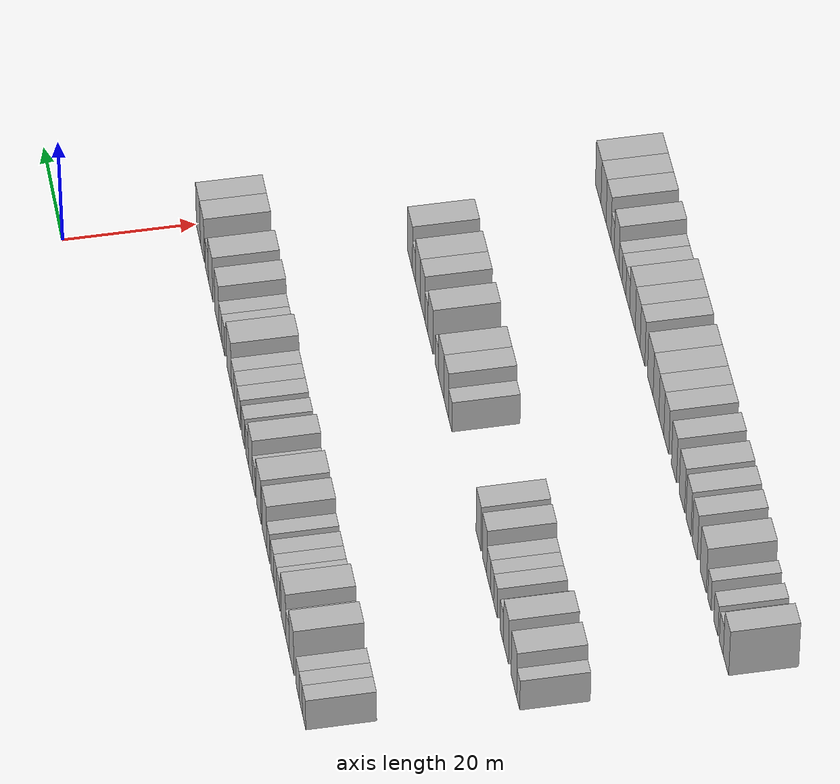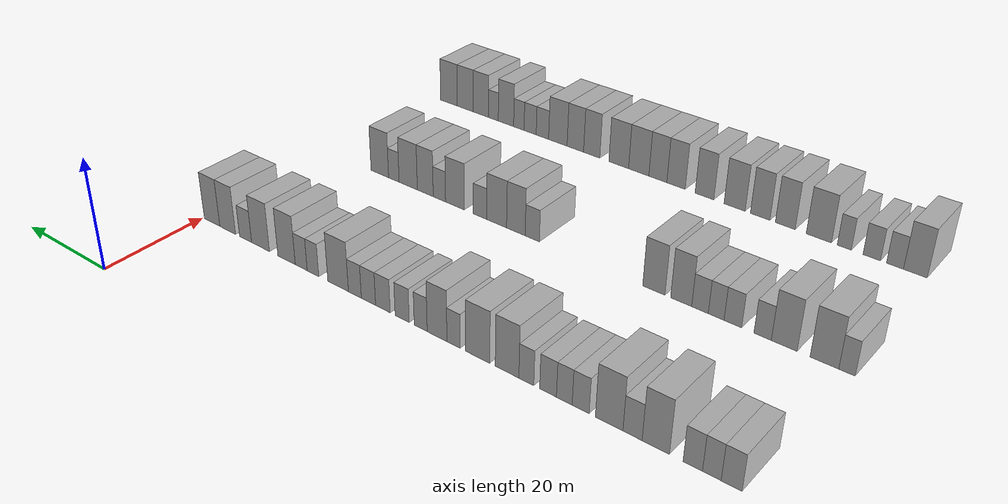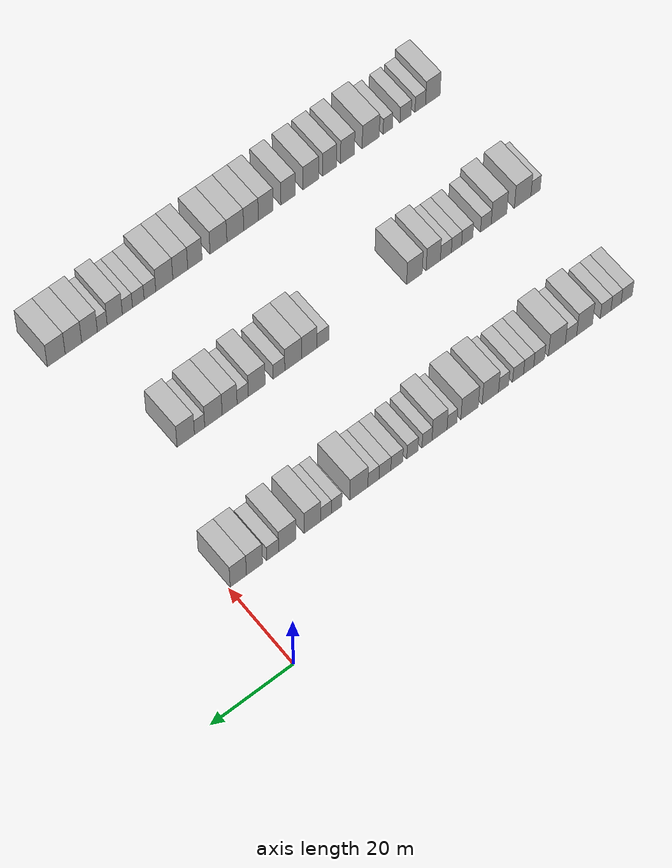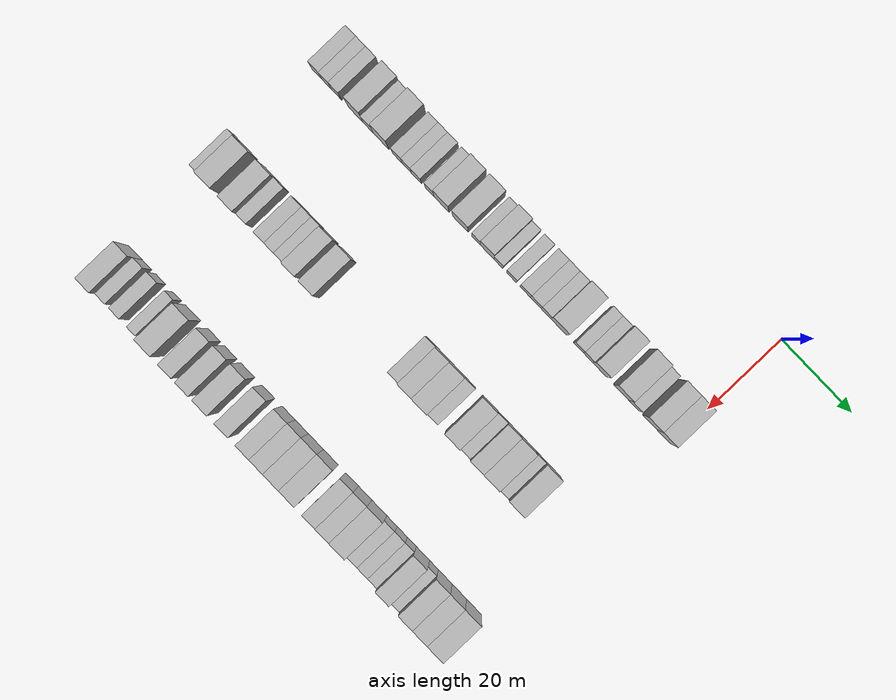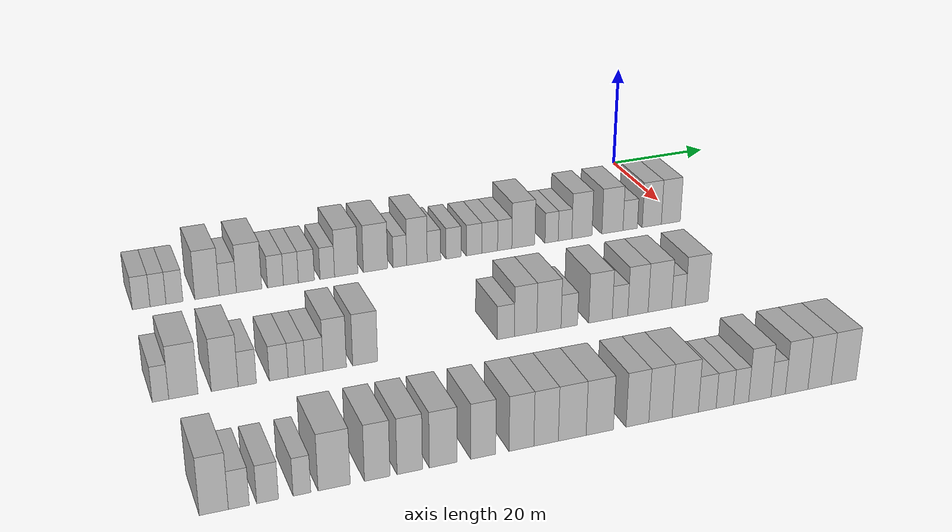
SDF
<sdf version="1.6">
 <world name="default">
  <model name="building_47">
   <static>1</static>
   <pose>25.0000 -100.5832 0 0.000000 0.000000 0.000000</pose>
   <link name="link">
    <pose>0 0 3.00 0 0 0</pose>
    <collision name="collision"><geometry><box><size>10.0000 2.9281 6.0000</size></box></geometry></collision>
    <visual name="visual">
     <cast_shadows>0</cast_shadows>
     <geometry><box><size>10.0000 2.9281 6.0000</size></box></geometry>
     <material>
      <script>
       <uri>model://HANNAS_wall/materials/scripts</uri>
       <uri>model://HANNAS_wall/materials/textures</uri>
       <name>vrc/HANNAS_wall</name>
      </script>
     </material>
    </visual>
   </link>
  </model>
  <model name="building_48">
   <static>1</static>
   <pose>25.0000 -97.7933 0 0.000000 0.000000 0.000000</pose>
   <link name="link">
    <pose>0 0 3.00 0 0 0</pose>
    <collision name="collision"><geometry><box><size>10.0000 2.6516 6.0000</size></box></geometry></collision>
    <visual name="visual">
     <cast_shadows>0</cast_shadows>
     <geometry><box><size>10.0000 2.6516 6.0000</size></box></geometry>
     <material>
      <script>
       <uri>model://HANNAS_wall/materials/scripts</uri>
       <uri>model://HANNAS_wall/materials/textures</uri>
       <name>vrc/HANNAS_wall</name>
      </script>
     </material>
    </visual>
   </link>
  </model>
  <model name="building_49">
   <static>1</static>
   <pose>25.0000 -95.0564 0 0.000000 0.000000 0.000000</pose>
   <link name="link">
    <pose>0 0 3.00 0 0 0</pose>
    <collision name="collision"><geometry><box><size>10.0000 2.8222 6.0000</size></box></geometry></collision>
    <visual name="visual">
     <cast_shadows>0</cast_shadows>
     <geometry><box><size>10.0000 2.8222 6.0000</size></box></geometry>
     <material>
      <script>
       <uri>model://HANNAS_wall/materials/scripts</uri>
       <uri>model://HANNAS_wall/materials/textures</uri>
       <name>vrc/HANNAS_wall</name>
      </script>
     </material>
    </visual>
   </link>
  </model>
  <model name="building_50">
   <static>1</static>
   <pose>25.0000 -89.5795 0 0.000000 0.000000 0.000000</pose>
   <link name="link">
    <pose>0 0 4.50 0 0 0</pose>
    <collision name="collision"><geometry><box><size>10.0000 4.1316 9.0000</size></box></geometry></collision>
    <visual name="visual">
     <cast_shadows>0</cast_shadows>
     <geometry><box><size>10.0000 4.1316 9.0000</size></box></geometry>
     <material>
      <script>
       <uri>model://HANNAS_wall/materials/scripts</uri>
       <uri>model://HANNAS_wall/materials/textures</uri>
       <name>vrc/HANNAS_wall</name>
      </script>
     </material>
    </visual>
   </link>
  </model>
  <model name="building_51">
   <static>1</static>
   <pose>25.0000 -86.0362 0 0.000000 0.000000 0.000000</pose>
   <link name="link">
    <pose>0 0 3.00 0 0 0</pose>
    <collision name="collision"><geometry><box><size>10.0000 2.9551 6.0000</size></box></geometry></collision>
    <visual name="visual">
     <cast_shadows>0</cast_shadows>
     <geometry><box><size>10.0000 2.9551 6.0000</size></box></geometry>
     <material>
      <script>
       <uri>model://HANNAS_wall/materials/scripts</uri>
       <uri>model://HANNAS_wall/materials/textures</uri>
       <name>vrc/HANNAS_wall</name>
      </script>
     </material>
    </visual>
   </link>
  </model>
  <model name="building_52">
   <static>1</static>
   <pose>25.0000 -82.3727 0 0.000000 0.000000 0.000000</pose>
   <link name="link">
    <pose>0 0 4.50 0 0 0</pose>
    <collision name="collision"><geometry><box><size>10.0000 4.3717 9.0000</size></box></geometry></collision>
    <visual name="visual">
     <cast_shadows>0</cast_shadows>
     <geometry><box><size>10.0000 4.3717 9.0000</size></box></geometry>
     <material>
      <script>
       <uri>model://HANNAS_wall/materials/scripts</uri>
       <uri>model://HANNAS_wall/materials/textures</uri>
       <name>vrc/HANNAS_wall</name>
      </script>
     </material>
    </visual>
   </link>
  </model>
  <model name="building_53">
   <static>1</static>
   <pose>25.0000 -77.7964 0 0.000000 0.000000 0.000000</pose>
   <link name="link">
    <pose>0 0 3.00 0 0 0</pose>
    <collision name="collision"><geometry><box><size>10.0000 2.7808 6.0000</size></box></geometry></collision>
    <visual name="visual">
     <cast_shadows>0</cast_shadows>
     <geometry><box><size>10.0000 2.7808 6.0000</size></box></geometry>
     <material>
      <script>
       <uri>model://HANNAS_wall/materials/scripts</uri>
       <uri>model://HANNAS_wall/materials/textures</uri>
       <name>vrc/HANNAS_wall</name>
      </script>
     </material>
    </visual>
   </link>
  </model>
  <model name="building_54">
   <static>1</static>
   <pose>25.0000 -75.0967 0 0.000000 0.000000 0.000000</pose>
   <link name="link">
    <pose>0 0 3.00 0 0 0</pose>
    <collision name="collision"><geometry><box><size>10.0000 2.6186 6.0000</size></box></geometry></collision>
    <visual name="visual">
     <cast_shadows>0</cast_shadows>
     <geometry><box><size>10.0000 2.6186 6.0000</size></box></geometry>
     <material>
      <script>
       <uri>model://HANNAS_wall/materials/scripts</uri>
       <uri>model://HANNAS_wall/materials/textures</uri>
       <name>vrc/HANNAS_wall</name>
      </script>
     </material>
    </visual>
   </link>
  </model>
  <model name="building_55">
   <static>1</static>
   <pose>25.0000 -72.3685 0 0.000000 0.000000 0.000000</pose>
   <link name="link">
    <pose>0 0 3.00 0 0 0</pose>
    <collision name="collision"><geometry><box><size>10.0000 2.8379 6.0000</size></box></geometry></collision>
    <visual name="visual">
     <cast_shadows>0</cast_shadows>
     <geometry><box><size>10.0000 2.8379 6.0000</size></box></geometry>
     <material>
      <script>
       <uri>model://HANNAS_wall/materials/scripts</uri>
       <uri>model://HANNAS_wall/materials/textures</uri>
       <name>vrc/HANNAS_wall</name>
      </script>
     </material>
    </visual>
   </link>
  </model>
  <model name="building_56">
   <static>1</static>
   <pose>25.0000 -68.6530 0 0.000000 0.000000 0.000000</pose>
   <link name="link">
    <pose>0 0 3.00 0 0 0</pose>
    <collision name="collision"><geometry><box><size>10.0000 2.5930 6.0000</size></box></geometry></collision>
    <visual name="visual">
     <cast_shadows>0</cast_shadows>
     <geometry><box><size>10.0000 2.5930 6.0000</size></box></geometry>
     <material>
      <script>
       <uri>model://HANNAS_wall/materials/scripts</uri>
       <uri>model://HANNAS_wall/materials/textures</uri>
       <name>vrc/HANNAS_wall</name>
      </script>
     </material>
    </visual>
   </link>
  </model>
  <model name="building_57">
   <static>1</static>
   <pose>25.0000 -65.2637 0 0.000000 0.000000 0.000000</pose>
   <link name="link">
    <pose>0 0 4.50 0 0 0</pose>
    <collision name="collision"><geometry><box><size>10.0000 4.1855 9.0000</size></box></geometry></collision>
    <visual name="visual">
     <cast_shadows>0</cast_shadows>
     <geometry><box><size>10.0000 4.1855 9.0000</size></box></geometry>
     <material>
      <script>
       <uri>model://HANNAS_wall/materials/scripts</uri>
       <uri>model://HANNAS_wall/materials/textures</uri>
       <name>vrc/HANNAS_wall</name>
      </script>
     </material>
    </visual>
   </link>
  </model>
  <model name="building_58">
   <static>1</static>
   <pose>25.0000 -59.9567 0 0.000000 0.000000 0.000000</pose>
   <link name="link">
    <pose>0 0 4.50 0 0 0</pose>
    <collision name="collision"><geometry><box><size>10.0000 4.4284 9.0000</size></box></geometry></collision>
    <visual name="visual">
     <cast_shadows>0</cast_shadows>
     <geometry><box><size>10.0000 4.4284 9.0000</size></box></geometry>
     <material>
      <script>
       <uri>model://HANNAS_wall/materials/scripts</uri>
       <uri>model://HANNAS_wall/materials/textures</uri>
       <name>vrc/HANNAS_wall</name>
      </script>
     </material>
    </visual>
   </link>
  </model>
  <model name="building_59">
   <static>1</static>
   <pose>25.0000 -55.4880 0 0.000000 0.000000 0.000000</pose>
   <link name="link">
    <pose>0 0 3.00 0 0 0</pose>
    <collision name="collision"><geometry><box><size>10.0000 2.5090 6.0000</size></box></geometry></collision>
    <visual name="visual">
     <cast_shadows>0</cast_shadows>
     <geometry><box><size>10.0000 2.5090 6.0000</size></box></geometry>
     <material>
      <script>
       <uri>model://HANNAS_wall/materials/scripts</uri>
       <uri>model://HANNAS_wall/materials/textures</uri>
       <name>vrc/HANNAS_wall</name>
      </script>
     </material>
    </visual>
   </link>
  </model>
  <model name="building_60">
   <static>1</static>
   <pose>25.0000 -52.3363 0 0.000000 0.000000 0.000000</pose>
   <link name="link">
    <pose>0 0 4.50 0 0 0</pose>
    <collision name="collision"><geometry><box><size>10.0000 3.7945 9.0000</size></box></geometry></collision>
    <visual name="visual">
     <cast_shadows>0</cast_shadows>
     <geometry><box><size>10.0000 3.7945 9.0000</size></box></geometry>
     <material>
      <script>
       <uri>model://HANNAS_wall/materials/scripts</uri>
       <uri>model://HANNAS_wall/materials/textures</uri>
       <name>vrc/HANNAS_wall</name>
      </script>
     </material>
    </visual>
   </link>
  </model>
  <model name="building_61">
   <static>1</static>
   <pose>25.0000 -49.1689 0 0.000000 0.000000 0.000000</pose>
   <link name="link">
    <pose>0 0 3.00 0 0 0</pose>
    <collision name="collision"><geometry><box><size>10.0000 2.5404 6.0000</size></box></geometry></collision>
    <visual name="visual">
     <cast_shadows>0</cast_shadows>
     <geometry><box><size>10.0000 2.5404 6.0000</size></box></geometry>
     <material>
      <script>
       <uri>model://HANNAS_wall/materials/scripts</uri>
       <uri>model://HANNAS_wall/materials/textures</uri>
       <name>vrc/HANNAS_wall</name>
      </script>
     </material>
    </visual>
   </link>
  </model>
  <model name="building_62">
   <static>1</static>
   <pose>25.0000 -45.4842 0 0.000000 0.000000 0.000000</pose>
   <link name="link">
    <pose>0 0 3.00 0 0 0</pose>
    <collision name="collision"><geometry><box><size>10.0000 2.8289 6.0000</size></box></geometry></collision>
    <visual name="visual">
     <cast_shadows>0</cast_shadows>
     <geometry><box><size>10.0000 2.8289 6.0000</size></box></geometry>
     <material>
      <script>
       <uri>model://HANNAS_wall/materials/scripts</uri>
       <uri>model://HANNAS_wall/materials/textures</uri>
       <name>vrc/HANNAS_wall</name>
      </script>
     </material>
    </visual>
   </link>
  </model>
  <model name="building_63">
   <static>1</static>
   <pose>25.0000 -41.5726 0 0.000000 0.000000 0.000000</pose>
   <link name="link">
    <pose>0 0 3.00 0 0 0</pose>
    <collision name="collision"><geometry><box><size>10.0000 2.9943 6.0000</size></box></geometry></collision>
    <visual name="visual">
     <cast_shadows>0</cast_shadows>
     <geometry><box><size>10.0000 2.9943 6.0000</size></box></geometry>
     <material>
      <script>
       <uri>model://HANNAS_wall/materials/scripts</uri>
       <uri>model://HANNAS_wall/materials/textures</uri>
       <name>vrc/HANNAS_wall</name>
      </script>
     </material>
    </visual>
   </link>
  </model>
  <model name="building_64">
   <static>1</static>
   <pose>25.0000 -38.5840 0 0.000000 0.000000 0.000000</pose>
   <link name="link">
    <pose>0 0 3.00 0 0 0</pose>
    <collision name="collision"><geometry><box><size>10.0000 2.9829 6.0000</size></box></geometry></collision>
    <visual name="visual">
     <cast_shadows>0</cast_shadows>
     <geometry><box><size>10.0000 2.9829 6.0000</size></box></geometry>
     <material>
      <script>
       <uri>model://HANNAS_wall/materials/scripts</uri>
       <uri>model://HANNAS_wall/materials/textures</uri>
       <name>vrc/HANNAS_wall</name>
      </script>
     </material>
    </visual>
   </link>
  </model>
  <model name="building_65">
   <static>1</static>
   <pose>25.0000 -35.7138 0 0.000000 0.000000 0.000000</pose>
   <link name="link">
    <pose>0 0 3.00 0 0 0</pose>
    <collision name="collision"><geometry><box><size>10.0000 2.7575 6.0000</size></box></geometry></collision>
    <visual name="visual">
     <cast_shadows>0</cast_shadows>
     <geometry><box><size>10.0000 2.7575 6.0000</size></box></geometry>
     <material>
      <script>
       <uri>model://HANNAS_wall/materials/scripts</uri>
       <uri>model://HANNAS_wall/materials/textures</uri>
       <name>vrc/HANNAS_wall</name>
      </script>
     </material>
    </visual>
   </link>
  </model>
  <model name="building_66">
   <static>1</static>
   <pose>25.0000 -32.1000 0 0.000000 0.000000 0.000000</pose>
   <link name="link">
    <pose>0 0 4.50 0 0 0</pose>
    <collision name="collision"><geometry><box><size>10.0000 4.4702 9.0000</size></box></geometry></collision>
    <visual name="visual">
     <cast_shadows>0</cast_shadows>
     <geometry><box><size>10.0000 4.4702 9.0000</size></box></geometry>
     <material>
      <script>
       <uri>model://HANNAS_wall/materials/scripts</uri>
       <uri>model://HANNAS_wall/materials/textures</uri>
       <name>vrc/HANNAS_wall</name>
      </script>
     </material>
    </visual>
   </link>
  </model>
  <model name="building_67">
   <static>1</static>
   <pose>25.0000 -26.5671 0 0.000000 0.000000 0.000000</pose>
   <link name="link">
    <pose>0 0 3.00 0 0 0</pose>
    <collision name="collision"><geometry><box><size>10.0000 2.5955 6.0000</size></box></geometry></collision>
    <visual name="visual">
     <cast_shadows>0</cast_shadows>
     <geometry><box><size>10.0000 2.5955 6.0000</size></box></geometry>
     <material>
      <script>
       <uri>model://HANNAS_wall/materials/scripts</uri>
       <uri>model://HANNAS_wall/materials/textures</uri>
       <name>vrc/HANNAS_wall</name>
      </script>
     </material>
    </visual>
   </link>
  </model>
  <model name="building_68">
   <static>1</static>
   <pose>25.0000 -23.9135 0 0.000000 0.000000 0.000000</pose>
   <link name="link">
    <pose>0 0 3.00 0 0 0</pose>
    <collision name="collision"><geometry><box><size>10.0000 2.7118 6.0000</size></box></geometry></collision>
    <visual name="visual">
     <cast_shadows>0</cast_shadows>
     <geometry><box><size>10.0000 2.7118 6.0000</size></box></geometry>
     <material>
      <script>
       <uri>model://HANNAS_wall/materials/scripts</uri>
       <uri>model://HANNAS_wall/materials/textures</uri>
       <name>vrc/HANNAS_wall</name>
      </script>
     </material>
    </visual>
   </link>
  </model>
  <model name="building_69">
   <static>1</static>
   <pose>25.0000 -20.5390 0 0.000000 0.000000 0.000000</pose>
   <link name="link">
    <pose>0 0 4.50 0 0 0</pose>
    <collision name="collision"><geometry><box><size>10.0000 4.0373 9.0000</size></box></geometry></collision>
    <visual name="visual">
     <cast_shadows>0</cast_shadows>
     <geometry><box><size>10.0000 4.0373 9.0000</size></box></geometry>
     <material>
      <script>
       <uri>model://HANNAS_wall/materials/scripts</uri>
       <uri>model://HANNAS_wall/materials/textures</uri>
       <name>vrc/HANNAS_wall</name>
      </script>
     </material>
    </visual>
   </link>
  </model>
  <model name="building_70">
   <static>1</static>
   <pose>25.0000 -14.3833 0 0.000000 0.000000 0.000000</pose>
   <link name="link">
    <pose>0 0 4.50 0 0 0</pose>
    <collision name="collision"><geometry><box><size>10.0000 4.2741 9.0000</size></box></geometry></collision>
    <visual name="visual">
     <cast_shadows>0</cast_shadows>
     <geometry><box><size>10.0000 4.2741 9.0000</size></box></geometry>
     <material>
      <script>
       <uri>model://HANNAS_wall/materials/scripts</uri>
       <uri>model://HANNAS_wall/materials/textures</uri>
       <name>vrc/HANNAS_wall</name>
      </script>
     </material>
    </visual>
   </link>
  </model>
  <model name="building_71">
   <static>1</static>
   <pose>25.0000 -10.7717 0 0.000000 0.000000 0.000000</pose>
   <link name="link">
    <pose>0 0 3.00 0 0 0</pose>
    <collision name="collision"><geometry><box><size>10.0000 2.9490 6.0000</size></box></geometry></collision>
    <visual name="visual">
     <cast_shadows>0</cast_shadows>
     <geometry><box><size>10.0000 2.9490 6.0000</size></box></geometry>
     <material>
      <script>
       <uri>model://HANNAS_wall/materials/scripts</uri>
       <uri>model://HANNAS_wall/materials/textures</uri>
       <name>vrc/HANNAS_wall</name>
      </script>
     </material>
    </visual>
   </link>
  </model>
  <model name="building_72">
   <static>1</static>
   <pose>25.0000 -6.3272 0 0.000000 0.000000 0.000000</pose>
   <link name="link">
    <pose>0 0 4.50 0 0 0</pose>
    <collision name="collision"><geometry><box><size>10.0000 3.9400 9.0000</size></box></geometry></collision>
    <visual name="visual">
     <cast_shadows>0</cast_shadows>
     <geometry><box><size>10.0000 3.9400 9.0000</size></box></geometry>
     <material>
      <script>
       <uri>model://HANNAS_wall/materials/scripts</uri>
       <uri>model://HANNAS_wall/materials/textures</uri>
       <name>vrc/HANNAS_wall</name>
      </script>
     </material>
    </visual>
   </link>
  </model>
  <model name="building_73">
   <static>1</static>
   <pose>25.0000 -2.3782 0 0.000000 0.000000 0.000000</pose>
   <link name="link">
    <pose>0 0 4.50 0 0 0</pose>
    <collision name="collision"><geometry><box><size>10.0000 3.9581 9.0000</size></box></geometry></collision>
    <visual name="visual">
     <cast_shadows>0</cast_shadows>
     <geometry><box><size>10.0000 3.9581 9.0000</size></box></geometry>
     <material>
      <script>
       <uri>model://HANNAS_wall/materials/scripts</uri>
       <uri>model://HANNAS_wall/materials/textures</uri>
       <name>vrc/HANNAS_wall</name>
      </script>
     </material>
    </visual>
   </link>
  </model>
  <model name="building_194">
   <static>1</static>
   <pose>55.0000 -102.2028 0 0.000000 0.000000 0.000000</pose>
   <link name="link">
    <pose>0 0 3.00 0 0 0</pose>
    <collision name="collision"><geometry><box><size>10.0000 2.4482 6.0000</size></box></geometry></collision>
    <visual name="visual">
     <cast_shadows>0</cast_shadows>
     <geometry><box><size>10.0000 2.4482 6.0000</size></box></geometry>
     <material>
      <script>
       <uri>model://HANNAS_wall/materials/scripts</uri>
       <uri>model://HANNAS_wall/materials/textures</uri>
       <name>vrc/HANNAS_wall</name>
      </script>
     </material>
    </visual>
   </link>
  </model>
  <model name="building_195">
   <static>1</static>
   <pose>55.0000 -98.7954 0 0.000000 0.000000 0.000000</pose>
   <link name="link">
    <pose>0 0 4.50 0 0 0</pose>
    <collision name="collision"><geometry><box><size>10.0000 4.3665 9.0000</size></box></geometry></collision>
    <visual name="visual">
     <cast_shadows>0</cast_shadows>
     <geometry><box><size>10.0000 4.3665 9.0000</size></box></geometry>
     <material>
      <script>
       <uri>model://HANNAS_wall/materials/scripts</uri>
       <uri>model://HANNAS_wall/materials/textures</uri>
       <name>vrc/HANNAS_wall</name>
      </script>
     </material>
    </visual>
   </link>
  </model>
  <model name="building_196">
   <static>1</static>
   <pose>55.0000 -92.5720 0 0.000000 0.000000 0.000000</pose>
   <link name="link">
    <pose>0 0 4.50 0 0 0</pose>
    <collision name="collision"><geometry><box><size>10.0000 4.0804 9.0000</size></box></geometry></collision>
    <visual name="visual">
     <cast_shadows>0</cast_shadows>
     <geometry><box><size>10.0000 4.0804 9.0000</size></box></geometry>
     <material>
      <script>
       <uri>model://HANNAS_wall/materials/scripts</uri>
       <uri>model://HANNAS_wall/materials/textures</uri>
       <name>vrc/HANNAS_wall</name>
      </script>
     </material>
    </visual>
   </link>
  </model>
  <model name="building_197">
   <static>1</static>
   <pose>55.0000 -89.1308 0 0.000000 0.000000 0.000000</pose>
   <link name="link">
    <pose>0 0 3.00 0 0 0</pose>
    <collision name="collision"><geometry><box><size>10.0000 2.8020 6.0000</size></box></geometry></collision>
    <visual name="visual">
     <cast_shadows>0</cast_shadows>
     <geometry><box><size>10.0000 2.8020 6.0000</size></box></geometry>
     <material>
      <script>
       <uri>model://HANNAS_wall/materials/scripts</uri>
       <uri>model://HANNAS_wall/materials/textures</uri>
       <name>vrc/HANNAS_wall</name>
      </script>
     </material>
    </visual>
   </link>
  </model>
  <model name="building_198">
   <static>1</static>
   <pose>55.0000 -84.2648 0 0.000000 0.000000 0.000000</pose>
   <link name="link">
    <pose>0 0 3.00 0 0 0</pose>
    <collision name="collision"><geometry><box><size>10.0000 2.9299 6.0000</size></box></geometry></collision>
    <visual name="visual">
     <cast_shadows>0</cast_shadows>
     <geometry><box><size>10.0000 2.9299 6.0000</size></box></geometry>
     <material>
      <script>
       <uri>model://HANNAS_wall/materials/scripts</uri>
       <uri>model://HANNAS_wall/materials/textures</uri>
       <name>vrc/HANNAS_wall</name>
      </script>
     </material>
    </visual>
   </link>
  </model>
  <model name="building_199">
   <static>1</static>
   <pose>55.0000 -81.4683 0 0.000000 0.000000 0.000000</pose>
   <link name="link">
    <pose>0 0 3.00 0 0 0</pose>
    <collision name="collision"><geometry><box><size>10.0000 2.6632 6.0000</size></box></geometry></collision>
    <visual name="visual">
     <cast_shadows>0</cast_shadows>
     <geometry><box><size>10.0000 2.6632 6.0000</size></box></geometry>
     <material>
      <script>
       <uri>model://HANNAS_wall/materials/scripts</uri>
       <uri>model://HANNAS_wall/materials/textures</uri>
       <name>vrc/HANNAS_wall</name>
      </script>
     </material>
    </visual>
   </link>
  </model>
  <model name="building_200">
   <static>1</static>
   <pose>55.0000 -78.7149 0 0.000000 0.000000 0.000000</pose>
   <link name="link">
    <pose>0 0 3.00 0 0 0</pose>
    <collision name="collision"><geometry><box><size>10.0000 2.8436 6.0000</size></box></geometry></collision>
    <visual name="visual">
     <cast_shadows>0</cast_shadows>
     <geometry><box><size>10.0000 2.8436 6.0000</size></box></geometry>
     <material>
      <script>
       <uri>model://HANNAS_wall/materials/scripts</uri>
       <uri>model://HANNAS_wall/materials/textures</uri>
       <name>vrc/HANNAS_wall</name>
      </script>
     </material>
    </visual>
   </link>
  </model>
  <model name="building_201">
   <static>1</static>
   <pose>55.0000 -75.4433 0 0.000000 0.000000 0.000000</pose>
   <link name="link">
    <pose>0 0 4.50 0 0 0</pose>
    <collision name="collision"><geometry><box><size>10.0000 3.6996 9.0000</size></box></geometry></collision>
    <visual name="visual">
     <cast_shadows>0</cast_shadows>
     <geometry><box><size>10.0000 3.6996 9.0000</size></box></geometry>
     <material>
      <script>
       <uri>model://HANNAS_wall/materials/scripts</uri>
       <uri>model://HANNAS_wall/materials/textures</uri>
       <name>vrc/HANNAS_wall</name>
      </script>
     </material>
    </visual>
   </link>
  </model>
  <model name="building_202">
   <static>1</static>
   <pose>55.0000 -70.5849 0 0.000000 0.000000 0.000000</pose>
   <link name="link">
    <pose>0 0 4.50 0 0 0</pose>
    <collision name="collision"><geometry><box><size>10.0000 4.0172 9.0000</size></box></geometry></collision>
    <visual name="visual">
     <cast_shadows>0</cast_shadows>
     <geometry><box><size>10.0000 4.0172 9.0000</size></box></geometry>
     <material>
      <script>
       <uri>model://HANNAS_wall/materials/scripts</uri>
       <uri>model://HANNAS_wall/materials/textures</uri>
       <name>vrc/HANNAS_wall</name>
      </script>
     </material>
    </visual>
   </link>
  </model>
  <model name="building_203">
   <static>1</static>
   <pose>55.0000 -47.1713 0 0.000000 0.000000 0.000000</pose>
   <link name="link">
    <pose>0 0 3.00 0 0 0</pose>
    <collision name="collision"><geometry><box><size>10.0000 2.9367 6.0000</size></box></geometry></collision>
    <visual name="visual">
     <cast_shadows>0</cast_shadows>
     <geometry><box><size>10.0000 2.9367 6.0000</size></box></geometry>
     <material>
      <script>
       <uri>model://HANNAS_wall/materials/scripts</uri>
       <uri>model://HANNAS_wall/materials/textures</uri>
       <name>vrc/HANNAS_wall</name>
      </script>
     </material>
    </visual>
   </link>
  </model>
  <model name="building_204">
   <static>1</static>
   <pose>55.0000 -43.7609 0 0.000000 0.000000 0.000000</pose>
   <link name="link">
    <pose>0 0 4.50 0 0 0</pose>
    <collision name="collision"><geometry><box><size>10.0000 3.8841 9.0000</size></box></geometry></collision>
    <visual name="visual">
     <cast_shadows>0</cast_shadows>
     <geometry><box><size>10.0000 3.8841 9.0000</size></box></geometry>
     <material>
      <script>
       <uri>model://HANNAS_wall/materials/scripts</uri>
       <uri>model://HANNAS_wall/materials/textures</uri>
       <name>vrc/HANNAS_wall</name>
      </script>
     </material>
    </visual>
   </link>
  </model>
  <model name="building_205">
   <static>1</static>
   <pose>55.0000 -39.6885 0 0.000000 0.000000 0.000000</pose>
   <link name="link">
    <pose>0 0 4.50 0 0 0</pose>
    <collision name="collision"><geometry><box><size>10.0000 4.2608 9.0000</size></box></geometry></collision>
    <visual name="visual">
     <cast_shadows>0</cast_shadows>
     <geometry><box><size>10.0000 4.2608 9.0000</size></box></geometry>
     <material>
      <script>
       <uri>model://HANNAS_wall/materials/scripts</uri>
       <uri>model://HANNAS_wall/materials/textures</uri>
       <name>vrc/HANNAS_wall</name>
      </script>
     </material>
    </visual>
   </link>
  </model>
  <model name="building_206">
   <static>1</static>
   <pose>55.0000 -36.0979 0 0.000000 0.000000 0.000000</pose>
   <link name="link">
    <pose>0 0 3.00 0 0 0</pose>
    <collision name="collision"><geometry><box><size>10.0000 2.9204 6.0000</size></box></geometry></collision>
    <visual name="visual">
     <cast_shadows>0</cast_shadows>
     <geometry><box><size>10.0000 2.9204 6.0000</size></box></geometry>
     <material>
      <script>
       <uri>model://HANNAS_wall/materials/scripts</uri>
       <uri>model://HANNAS_wall/materials/textures</uri>
       <name>vrc/HANNAS_wall</name>
      </script>
     </material>
    </visual>
   </link>
  </model>
  <model name="building_207">
   <static>1</static>
   <pose>55.0000 -30.5308 0 0.000000 0.000000 0.000000</pose>
   <link name="link">
    <pose>0 0 4.50 0 0 0</pose>
    <collision name="collision"><geometry><box><size>10.0000 4.2138 9.0000</size></box></geometry></collision>
    <visual name="visual">
     <cast_shadows>0</cast_shadows>
     <geometry><box><size>10.0000 4.2138 9.0000</size></box></geometry>
     <material>
      <script>
       <uri>model://HANNAS_wall/materials/scripts</uri>
       <uri>model://HANNAS_wall/materials/textures</uri>
       <name>vrc/HANNAS_wall</name>
      </script>
     </material>
    </visual>
   </link>
  </model>
  <model name="building_208">
   <static>1</static>
   <pose>55.0000 -27.0172 0 0.000000 0.000000 0.000000</pose>
   <link name="link">
    <pose>0 0 3.00 0 0 0</pose>
    <collision name="collision"><geometry><box><size>10.0000 2.8134 6.0000</size></box></geometry></collision>
    <visual name="visual">
     <cast_shadows>0</cast_shadows>
     <geometry><box><size>10.0000 2.8134 6.0000</size></box></geometry>
     <material>
      <script>
       <uri>model://HANNAS_wall/materials/scripts</uri>
       <uri>model://HANNAS_wall/materials/textures</uri>
       <name>vrc/HANNAS_wall</name>
      </script>
     </material>
    </visual>
   </link>
  </model>
  <model name="building_209">
   <static>1</static>
   <pose>55.0000 -23.7592 0 0.000000 0.000000 0.000000</pose>
   <link name="link">
    <pose>0 0 4.50 0 0 0</pose>
    <collision name="collision"><geometry><box><size>10.0000 3.7027 9.0000</size></box></geometry></collision>
    <visual name="visual">
     <cast_shadows>0</cast_shadows>
     <geometry><box><size>10.0000 3.7027 9.0000</size></box></geometry>
     <material>
      <script>
       <uri>model://HANNAS_wall/materials/scripts</uri>
       <uri>model://HANNAS_wall/materials/textures</uri>
       <name>vrc/HANNAS_wall</name>
      </script>
     </material>
    </visual>
   </link>
  </model>
  <model name="building_210">
   <static>1</static>
   <pose>55.0000 -19.7408 0 0.000000 0.000000 0.000000</pose>
   <link name="link">
    <pose>0 0 4.50 0 0 0</pose>
    <collision name="collision"><geometry><box><size>10.0000 4.3341 9.0000</size></box></geometry></collision>
    <visual name="visual">
     <cast_shadows>0</cast_shadows>
     <geometry><box><size>10.0000 4.3341 9.0000</size></box></geometry>
     <material>
      <script>
       <uri>model://HANNAS_wall/materials/scripts</uri>
       <uri>model://HANNAS_wall/materials/textures</uri>
       <name>vrc/HANNAS_wall</name>
      </script>
     </material>
    </visual>
   </link>
  </model>
  <model name="building_211">
   <static>1</static>
   <pose>55.0000 -16.3019 0 0.000000 0.000000 0.000000</pose>
   <link name="link">
    <pose>0 0 3.00 0 0 0</pose>
    <collision name="collision"><geometry><box><size>10.0000 2.5436 6.0000</size></box></geometry></collision>
    <visual name="visual">
     <cast_shadows>0</cast_shadows>
     <geometry><box><size>10.0000 2.5436 6.0000</size></box></geometry>
     <material>
      <script>
       <uri>model://HANNAS_wall/materials/scripts</uri>
       <uri>model://HANNAS_wall/materials/textures</uri>
       <name>vrc/HANNAS_wall</name>
      </script>
     </material>
    </visual>
   </link>
  </model>
  <model name="building_212">
   <static>1</static>
   <pose>55.0000 -12.8801 0 0.000000 0.000000 0.000000</pose>
   <link name="link">
    <pose>0 0 4.50 0 0 0</pose>
    <collision name="collision"><geometry><box><size>10.0000 4.3001 9.0000</size></box></geometry></collision>
    <visual name="visual">
     <cast_shadows>0</cast_shadows>
     <geometry><box><size>10.0000 4.3001 9.0000</size></box></geometry>
     <material>
      <script>
       <uri>model://HANNAS_wall/materials/scripts</uri>
       <uri>model://HANNAS_wall/materials/textures</uri>
       <name>vrc/HANNAS_wall</name>
      </script>
     </material>
    </visual>
   </link>
  </model>
  <model name="building_320">
   <static>1</static>
   <pose>85.0000 -100.0299 0 0.000000 0.000000 0.000000</pose>
   <link name="link">
    <pose>0 0 4.50 0 0 0</pose>
    <collision name="collision"><geometry><box><size>10.0000 3.8593 9.0000</size></box></geometry></collision>
    <visual name="visual">
     <cast_shadows>0</cast_shadows>
     <geometry><box><size>10.0000 3.8593 9.0000</size></box></geometry>
     <material>
      <script>
       <uri>model://HANNAS_wall/materials/scripts</uri>
       <uri>model://HANNAS_wall/materials/textures</uri>
       <name>vrc/HANNAS_wall</name>
      </script>
     </material>
    </visual>
   </link>
  </model>
  <model name="building_321">
   <static>1</static>
   <pose>85.0000 -96.7020 0 0.000000 0.000000 0.000000</pose>
   <link name="link">
    <pose>0 0 3.00 0 0 0</pose>
    <collision name="collision"><geometry><box><size>10.0000 2.7965 6.0000</size></box></geometry></collision>
    <visual name="visual">
     <cast_shadows>0</cast_shadows>
     <geometry><box><size>10.0000 2.7965 6.0000</size></box></geometry>
     <material>
      <script>
       <uri>model://HANNAS_wall/materials/scripts</uri>
       <uri>model://HANNAS_wall/materials/textures</uri>
       <name>vrc/HANNAS_wall</name>
      </script>
     </material>
    </visual>
   </link>
  </model>
  <model name="building_322">
   <static>1</static>
   <pose>85.0000 -92.8317 0 0.000000 0.000000 0.000000</pose>
   <link name="link">
    <pose>0 0 3.00 0 0 0</pose>
    <collision name="collision"><geometry><box><size>10.0000 2.9440 6.0000</size></box></geometry></collision>
    <visual name="visual">
     <cast_shadows>0</cast_shadows>
     <geometry><box><size>10.0000 2.9440 6.0000</size></box></geometry>
     <material>
      <script>
       <uri>model://HANNAS_wall/materials/scripts</uri>
       <uri>model://HANNAS_wall/materials/textures</uri>
       <name>vrc/HANNAS_wall</name>
      </script>
     </material>
    </visual>
   </link>
  </model>
  <model name="building_323">
   <static>1</static>
   <pose>85.0000 -88.1414 0 0.000000 0.000000 0.000000</pose>
   <link name="link">
    <pose>0 0 3.00 0 0 0</pose>
    <collision name="collision"><geometry><box><size>10.0000 2.4365 6.0000</size></box></geometry></collision>
    <visual name="visual">
     <cast_shadows>0</cast_shadows>
     <geometry><box><size>10.0000 2.4365 6.0000</size></box></geometry>
     <material>
      <script>
       <uri>model://HANNAS_wall/materials/scripts</uri>
       <uri>model://HANNAS_wall/materials/textures</uri>
       <name>vrc/HANNAS_wall</name>
      </script>
     </material>
    </visual>
   </link>
  </model>
  <model name="building_324">
   <static>1</static>
   <pose>85.0000 -83.6807 0 0.000000 0.000000 0.000000</pose>
   <link name="link">
    <pose>0 0 4.50 0 0 0</pose>
    <collision name="collision"><geometry><box><size>10.0000 4.4850 9.0000</size></box></geometry></collision>
    <visual name="visual">
     <cast_shadows>0</cast_shadows>
     <geometry><box><size>10.0000 4.4850 9.0000</size></box></geometry>
     <material>
      <script>
       <uri>model://HANNAS_wall/materials/scripts</uri>
       <uri>model://HANNAS_wall/materials/textures</uri>
       <name>vrc/HANNAS_wall</name>
      </script>
     </material>
    </visual>
   </link>
  </model>
  <model name="building_325">
   <static>1</static>
   <pose>85.0000 -77.6205 0 0.000000 0.000000 0.000000</pose>
   <link name="link">
    <pose>0 0 4.50 0 0 0</pose>
    <collision name="collision"><geometry><box><size>10.0000 3.6355 9.0000</size></box></geometry></collision>
    <visual name="visual">
     <cast_shadows>0</cast_shadows>
     <geometry><box><size>10.0000 3.6355 9.0000</size></box></geometry>
     <material>
      <script>
       <uri>model://HANNAS_wall/materials/scripts</uri>
       <uri>model://HANNAS_wall/materials/textures</uri>
       <name>vrc/HANNAS_wall</name>
      </script>
     </material>
    </visual>
   </link>
  </model>
  <model name="building_326">
   <static>1</static>
   <pose>85.0000 -72.9662 0 0.000000 0.000000 0.000000</pose>
   <link name="link">
    <pose>0 0 4.50 0 0 0</pose>
    <collision name="collision"><geometry><box><size>10.0000 3.6731 9.0000</size></box></geometry></collision>
    <visual name="visual">
     <cast_shadows>0</cast_shadows>
     <geometry><box><size>10.0000 3.6731 9.0000</size></box></geometry>
     <material>
      <script>
       <uri>model://HANNAS_wall/materials/scripts</uri>
       <uri>model://HANNAS_wall/materials/textures</uri>
       <name>vrc/HANNAS_wall</name>
      </script>
     </material>
    </visual>
   </link>
  </model>
  <model name="building_327">
   <static>1</static>
   <pose>85.0000 -68.0951 0 0.000000 0.000000 0.000000</pose>
   <link name="link">
    <pose>0 0 4.50 0 0 0</pose>
    <collision name="collision"><geometry><box><size>10.0000 4.0691 9.0000</size></box></geometry></collision>
    <visual name="visual">
     <cast_shadows>0</cast_shadows>
     <geometry><box><size>10.0000 4.0691 9.0000</size></box></geometry>
     <material>
      <script>
       <uri>model://HANNAS_wall/materials/scripts</uri>
       <uri>model://HANNAS_wall/materials/textures</uri>
       <name>vrc/HANNAS_wall</name>
      </script>
     </material>
    </visual>
   </link>
  </model>
  <model name="building_328">
   <static>1</static>
   <pose>85.0000 -62.2060 0 0.000000 0.000000 0.000000</pose>
   <link name="link">
    <pose>0 0 4.50 0 0 0</pose>
    <collision name="collision"><geometry><box><size>10.0000 3.7090 9.0000</size></box></geometry></collision>
    <visual name="visual">
     <cast_shadows>0</cast_shadows>
     <geometry><box><size>10.0000 3.7090 9.0000</size></box></geometry>
     <material>
      <script>
       <uri>model://HANNAS_wall/materials/scripts</uri>
       <uri>model://HANNAS_wall/materials/textures</uri>
       <name>vrc/HANNAS_wall</name>
      </script>
     </material>
    </visual>
   </link>
  </model>
  <model name="building_329">
   <static>1</static>
   <pose>85.0000 -56.4713 0 0.000000 0.000000 0.000000</pose>
   <link name="link">
    <pose>0 0 4.50 0 0 0</pose>
    <collision name="collision"><geometry><box><size>10.0000 3.7604 9.0000</size></box></geometry></collision>
    <visual name="visual">
     <cast_shadows>0</cast_shadows>
     <geometry><box><size>10.0000 3.7604 9.0000</size></box></geometry>
     <material>
      <script>
       <uri>model://HANNAS_wall/materials/scripts</uri>
       <uri>model://HANNAS_wall/materials/textures</uri>
       <name>vrc/HANNAS_wall</name>
      </script>
     </material>
    </visual>
   </link>
  </model>
  <model name="building_330">
   <static>1</static>
   <pose>85.0000 -52.7170 0 0.000000 0.000000 0.000000</pose>
   <link name="link">
    <pose>0 0 4.50 0 0 0</pose>
    <collision name="collision"><geometry><box><size>10.0000 3.7481 9.0000</size></box></geometry></collision>
    <visual name="visual">
     <cast_shadows>0</cast_shadows>
     <geometry><box><size>10.0000 3.7481 9.0000</size></box></geometry>
     <material>
      <script>
       <uri>model://HANNAS_wall/materials/scripts</uri>
       <uri>model://HANNAS_wall/materials/textures</uri>
       <name>vrc/HANNAS_wall</name>
      </script>
     </material>
    </visual>
   </link>
  </model>
  <model name="building_331">
   <static>1</static>
   <pose>85.0000 -48.6863 0 0.000000 0.000000 0.000000</pose>
   <link name="link">
    <pose>0 0 4.50 0 0 0</pose>
    <collision name="collision"><geometry><box><size>10.0000 4.3134 9.0000</size></box></geometry></collision>
    <visual name="visual">
     <cast_shadows>0</cast_shadows>
     <geometry><box><size>10.0000 4.3134 9.0000</size></box></geometry>
     <material>
      <script>
       <uri>model://HANNAS_wall/materials/scripts</uri>
       <uri>model://HANNAS_wall/materials/textures</uri>
       <name>vrc/HANNAS_wall</name>
      </script>
     </material>
    </visual>
   </link>
  </model>
  <model name="building_332">
   <static>1</static>
   <pose>85.0000 -44.3860 0 0.000000 0.000000 0.000000</pose>
   <link name="link">
    <pose>0 0 4.50 0 0 0</pose>
    <collision name="collision"><geometry><box><size>10.0000 4.2872 9.0000</size></box></geometry></collision>
    <visual name="visual">
     <cast_shadows>0</cast_shadows>
     <geometry><box><size>10.0000 4.2872 9.0000</size></box></geometry>
     <material>
      <script>
       <uri>model://HANNAS_wall/materials/scripts</uri>
       <uri>model://HANNAS_wall/materials/textures</uri>
       <name>vrc/HANNAS_wall</name>
      </script>
     </material>
    </visual>
   </link>
  </model>
  <model name="building_333">
   <static>1</static>
   <pose>85.0000 -38.4229 0 0.000000 0.000000 0.000000</pose>
   <link name="link">
    <pose>0 0 4.50 0 0 0</pose>
    <collision name="collision"><geometry><box><size>10.0000 3.6389 9.0000</size></box></geometry></collision>
    <visual name="visual">
     <cast_shadows>0</cast_shadows>
     <geometry><box><size>10.0000 3.6389 9.0000</size></box></geometry>
     <material>
      <script>
       <uri>model://HANNAS_wall/materials/scripts</uri>
       <uri>model://HANNAS_wall/materials/textures</uri>
       <name>vrc/HANNAS_wall</name>
      </script>
     </material>
    </visual>
   </link>
  </model>
  <model name="building_334">
   <static>1</static>
   <pose>85.0000 -34.7215 0 0.000000 0.000000 0.000000</pose>
   <link name="link">
    <pose>0 0 4.50 0 0 0</pose>
    <collision name="collision"><geometry><box><size>10.0000 3.7639 9.0000</size></box></geometry></collision>
    <visual name="visual">
     <cast_shadows>0</cast_shadows>
     <geometry><box><size>10.0000 3.7639 9.0000</size></box></geometry>
     <material>
      <script>
       <uri>model://HANNAS_wall/materials/scripts</uri>
       <uri>model://HANNAS_wall/materials/textures</uri>
       <name>vrc/HANNAS_wall</name>
      </script>
     </material>
    </visual>
   </link>
  </model>
  <model name="building_335">
   <static>1</static>
   <pose>85.0000 -30.6955 0 0.000000 0.000000 0.000000</pose>
   <link name="link">
    <pose>0 0 4.50 0 0 0</pose>
    <collision name="collision"><geometry><box><size>10.0000 4.2881 9.0000</size></box></geometry></collision>
    <visual name="visual">
     <cast_shadows>0</cast_shadows>
     <geometry><box><size>10.0000 4.2881 9.0000</size></box></geometry>
     <material>
      <script>
       <uri>model://HANNAS_wall/materials/scripts</uri>
       <uri>model://HANNAS_wall/materials/textures</uri>
       <name>vrc/HANNAS_wall</name>
      </script>
     </material>
    </visual>
   </link>
  </model>
  <model name="building_336">
   <static>1</static>
   <pose>85.0000 -27.0831 0 0.000000 0.000000 0.000000</pose>
   <link name="link">
    <pose>0 0 3.00 0 0 0</pose>
    <collision name="collision"><geometry><box><size>10.0000 2.9366 6.0000</size></box></geometry></collision>
    <visual name="visual">
     <cast_shadows>0</cast_shadows>
     <geometry><box><size>10.0000 2.9366 6.0000</size></box></geometry>
     <material>
      <script>
       <uri>model://HANNAS_wall/materials/scripts</uri>
       <uri>model://HANNAS_wall/materials/textures</uri>
       <name>vrc/HANNAS_wall</name>
      </script>
     </material>
    </visual>
   </link>
  </model>
  <model name="building_337">
   <static>1</static>
   <pose>85.0000 -24.1639 0 0.000000 0.000000 0.000000</pose>
   <link name="link">
    <pose>0 0 3.00 0 0 0</pose>
    <collision name="collision"><geometry><box><size>10.0000 2.9019 6.0000</size></box></geometry></collision>
    <visual name="visual">
     <cast_shadows>0</cast_shadows>
     <geometry><box><size>10.0000 2.9019 6.0000</size></box></geometry>
     <material>
      <script>
       <uri>model://HANNAS_wall/materials/scripts</uri>
       <uri>model://HANNAS_wall/materials/textures</uri>
       <name>vrc/HANNAS_wall</name>
      </script>
     </material>
    </visual>
   </link>
  </model>
  <model name="building_338">
   <static>1</static>
   <pose>85.0000 -21.4491 0 0.000000 0.000000 0.000000</pose>
   <link name="link">
    <pose>0 0 3.00 0 0 0</pose>
    <collision name="collision"><geometry><box><size>10.0000 2.5276 6.0000</size></box></geometry></collision>
    <visual name="visual">
     <cast_shadows>0</cast_shadows>
     <geometry><box><size>10.0000 2.5276 6.0000</size></box></geometry>
     <material>
      <script>
       <uri>model://HANNAS_wall/materials/scripts</uri>
       <uri>model://HANNAS_wall/materials/textures</uri>
       <name>vrc/HANNAS_wall</name>
      </script>
     </material>
    </visual>
   </link>
  </model>
  <model name="building_339">
   <static>1</static>
   <pose>85.0000 -18.2916 0 0.000000 0.000000 0.000000</pose>
   <link name="link">
    <pose>0 0 4.50 0 0 0</pose>
    <collision name="collision"><geometry><box><size>10.0000 3.7875 9.0000</size></box></geometry></collision>
    <visual name="visual">
     <cast_shadows>0</cast_shadows>
     <geometry><box><size>10.0000 3.7875 9.0000</size></box></geometry>
     <material>
      <script>
       <uri>model://HANNAS_wall/materials/scripts</uri>
       <uri>model://HANNAS_wall/materials/textures</uri>
       <name>vrc/HANNAS_wall</name>
      </script>
     </material>
    </visual>
   </link>
  </model>
  <model name="building_340">
   <static>1</static>
   <pose>85.0000 -15.1722 0 0.000000 0.000000 0.000000</pose>
   <link name="link">
    <pose>0 0 3.00 0 0 0</pose>
    <collision name="collision"><geometry><box><size>10.0000 2.4511 6.0000</size></box></geometry></collision>
    <visual name="visual">
     <cast_shadows>0</cast_shadows>
     <geometry><box><size>10.0000 2.4511 6.0000</size></box></geometry>
     <material>
      <script>
       <uri>model://HANNAS_wall/materials/scripts</uri>
       <uri>model://HANNAS_wall/materials/textures</uri>
       <name>vrc/HANNAS_wall</name>
      </script>
     </material>
    </visual>
   </link>
  </model>
  <model name="building_341">
   <static>1</static>
   <pose>85.0000 -12.0036 0 0.000000 0.000000 0.000000</pose>
   <link name="link">
    <pose>0 0 4.50 0 0 0</pose>
    <collision name="collision"><geometry><box><size>10.0000 3.8862 9.0000</size></box></geometry></collision>
    <visual name="visual">
     <cast_shadows>0</cast_shadows>
     <geometry><box><size>10.0000 3.8862 9.0000</size></box></geometry>
     <material>
      <script>
       <uri>model://HANNAS_wall/materials/scripts</uri>
       <uri>model://HANNAS_wall/materials/textures</uri>
       <name>vrc/HANNAS_wall</name>
      </script>
     </material>
    </visual>
   </link>
  </model>
  <model name="building_342">
   <static>1</static>
   <pose>85.0000 -8.0197 0 0.000000 0.000000 0.000000</pose>
   <link name="link">
    <pose>0 0 4.50 0 0 0</pose>
    <collision name="collision"><geometry><box><size>10.0000 4.0815 9.0000</size></box></geometry></collision>
    <visual name="visual">
     <cast_shadows>0</cast_shadows>
     <geometry><box><size>10.0000 4.0815 9.0000</size></box></geometry>
     <material>
      <script>
       <uri>model://HANNAS_wall/materials/scripts</uri>
       <uri>model://HANNAS_wall/materials/textures</uri>
       <name>vrc/HANNAS_wall</name>
      </script>
     </material>
    </visual>
   </link>
  </model>
  <model name="building_343">
   <static>1</static>
   <pose>85.0000 -3.7793 0 0.000000 0.000000 0.000000</pose>
   <link name="link">
    <pose>0 0 4.50 0 0 0</pose>
    <collision name="collision"><geometry><box><size>10.0000 4.3992 9.0000</size></box></geometry></collision>
    <visual name="visual">
     <cast_shadows>0</cast_shadows>
     <geometry><box><size>10.0000 4.3992 9.0000</size></box></geometry>
     <material>
      <script>
       <uri>model://HANNAS_wall/materials/scripts</uri>
       <uri>model://HANNAS_wall/materials/textures</uri>
       <name>vrc/HANNAS_wall</name>
      </script>
     </material>
    </visual>
   </link>
  </model>
 </world>
</sdf>
